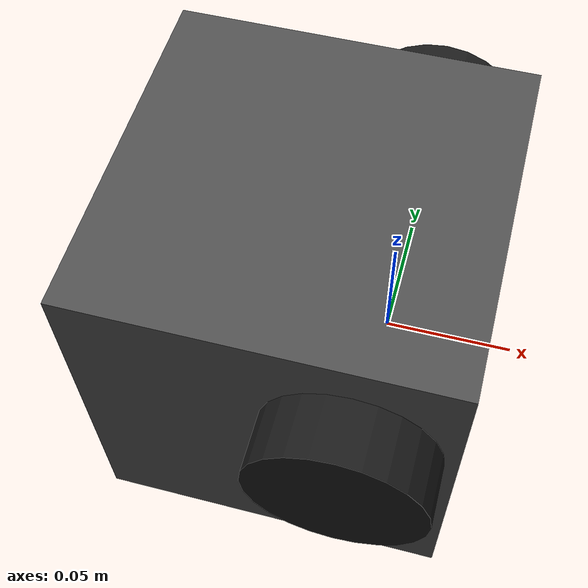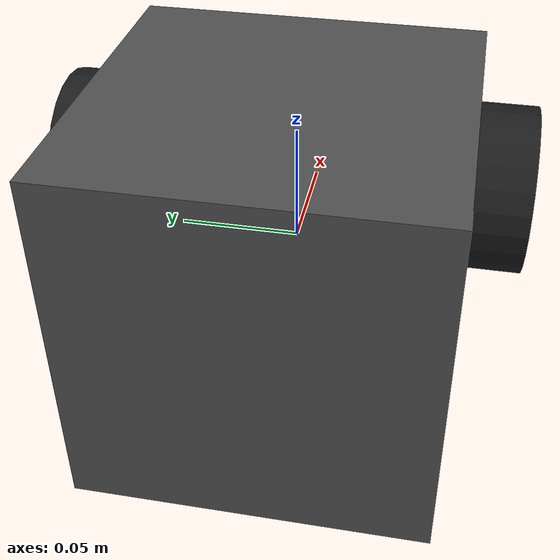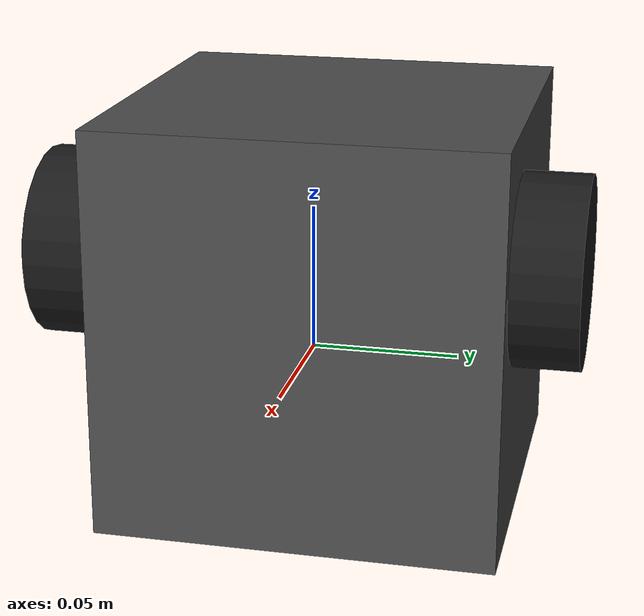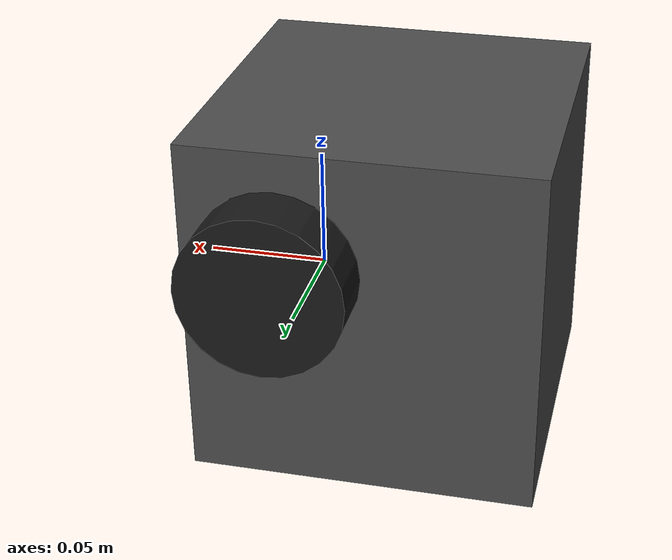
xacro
<?xml version="1.0" ?>
<robot name="turtlebot3_burger" xmlns:xacro="http://ros.org/wiki/xacro">

  <!-- Properties -->
  <xacro:property name="M_PI" value="3.1415926535897931" />
  <xacro:property name="wheel_radius" value="0.033" />
  <xacro:property name="wheel_width" value="0.026" />
  <xacro:property name="wheel_separation" value="0.160" />
  <xacro:property name="base_radius" value="0.105" />
  <xacro:property name="base_height" value="0.192" />

  <!-- Base Link -->
  <link name="base_footprint"/>

  <joint name="base_joint" type="fixed">
    <parent link="base_footprint"/>
    <child link="base_link"/>
    <origin xyz="0.0 0.0 0.010" rpy="0 0 0"/>
  </joint>

  <link name="base_link">
    <visual>
      <origin xyz="-0.032 0 0.0" rpy="0 0 0"/>
      <geometry>
        <box size="0.140 0.140 0.143"/>
      </geometry>
      <material name="light_black">
        <color rgba="0.3 0.3 0.3 1.0"/>
      </material>
    </visual>

    <collision>
      <origin xyz="-0.032 0 0.070" rpy="0 0 0"/>
      <geometry>
        <box size="0.140 0.140 0.143"/>
      </geometry>
    </collision>

    <inertial>
      <origin xyz="0 0 0" rpy="0 0 0"/>
      <mass value="1.0"/>
      <inertia ixx="1e-3" ixy="0.0" ixz="0.0"
               iyy="1e-3" iyz="0.0"
               izz="1e-3"/>
    </inertial>
  </link>

  <!-- Wheel Macro -->
  <xacro:macro name="wheel" params="prefix reflect">
    <link name="${prefix}_wheel_link">
      <visual>
        <origin xyz="0 0 0" rpy="${M_PI/2} 0 0"/>
        <geometry>
          <cylinder length="${wheel_width}" radius="${wheel_radius}"/>
        </geometry>
        <material name="dark">
          <color rgba="0.1 0.1 0.1 1.0"/>
        </material>
      </visual>

      <collision>
        <origin xyz="0 0 0" rpy="${M_PI/2} 0 0"/>
        <geometry>
          <cylinder length="${wheel_width}" radius="${wheel_radius}"/>
        </geometry>
      </collision>

      <inertial>
        <origin xyz="0 0 0" rpy="0 0 0"/>
        <mass value="0.1"/>
        <inertia ixx="1e-4" ixy="0.0" ixz="0.0"
                 iyy="1e-4" iyz="0.0"
                 izz="1e-4"/>
      </inertial>
    </link>

    <joint name="${prefix}_wheel_joint" type="continuous">
      <parent link="base_link"/>
      <child link="${prefix}_wheel_link"/>
      <origin xyz="0.0 ${reflect*wheel_separation/2} 0.023" rpy="0 0 0"/>
      <axis xyz="0 1 0"/>
    </joint>
  </xacro:macro>

  <xacro:wheel prefix="left" reflect="1"/>
  <xacro:wheel prefix="right" reflect="-1"/>

  <!-- Caster Wheel -->
  <link name="caster_link">
    <visual>
      <origin xyz="0 0 0" rpy="0 0 0"/>
      <geometry>
        <sphere radius="0.005"/>
      </geometry>
      <material name="dark">
        <color rgba="0.1 0.1 0.1 1.0"/>
      </material>
    </visual>

    <collision>
      <origin xyz="0 0 0" rpy="0 0 0"/>
      <geometry>
        <sphere radius="0.005"/>
      </geometry>
    </collision>

    <inertial>
      <origin xyz="0 0 0" rpy="0 0 0"/>
      <mass value="0.01"/>
      <inertia ixx="1e-6" ixy="0.0" ixz="0.0"
               iyy="1e-6" iyz="0.0"
               izz="1e-6"/>
    </inertial>
  </link>

  <joint name="caster_joint" type="fixed">
    <parent link="base_link"/>
    <child link="caster_link"/>
    <origin xyz="-0.081 0 -0.004" rpy="0 0 0"/>
  </joint>

  <!-- IMU Link -->
  <link name="imu_link">
    <inertial>
      <origin xyz="0 0 0" rpy="0 0 0"/>
      <mass value="0.001"/>
      <inertia ixx="1e-6" ixy="0" ixz="0"
               iyy="1e-6" iyz="0"
               izz="1e-6"/>
    </inertial>
  </link>

  <joint name="imu_joint" type="fixed">
    <parent link="base_link"/>
    <child link="imu_link"/>
    <origin xyz="-0.032 0 0.068" rpy="0 0 0"/>
  </joint>

  <!-- Gazebo Plugins -->
  <gazebo>
    <plugin name="gazebo_ros_control" filename="libgazebo_ros_diff_drive.so">
      <ros>
        <namespace>/</namespace>
      </ros>
      <update_rate>30</update_rate>
      <left_joint>left_wheel_joint</left_joint>
      <right_joint>right_wheel_joint</right_joint>
      <wheel_separation>${wheel_separation}</wheel_separation>
      <wheel_diameter>${2*wheel_radius}</wheel_diameter>
      <max_wheel_torque>20</max_wheel_torque>
      <max_wheel_acceleration>1.0</max_wheel_acceleration>
      <command_topic>cmd_vel</command_topic>
      <publish_odom>true</publish_odom>
      <publish_odom_tf>true</publish_odom_tf>
      <publish_wheel_tf>false</publish_wheel_tf>
      <odometry_topic>odom</odometry_topic>
      <odometry_frame>odom</odometry_frame>
      <robot_base_frame>base_footprint</robot_base_frame>
    </plugin>
  </gazebo>

  <!-- Gazebo colors -->
  <gazebo reference="base_link">
    <material>Gazebo/DarkGrey</material>
  </gazebo>

  <gazebo reference="left_wheel_link">
    <material>Gazebo/Black</material>
    <mu1>0.5</mu1>
    <mu2>0.5</mu2>
    <kp>1000000.0</kp>
    <kd>100.0</kd>
    <minDepth>0.001</minDepth>
    <maxVel>1.0</maxVel>
  </gazebo>

  <gazebo reference="right_wheel_link">
    <material>Gazebo/Black</material>
    <mu1>0.5</mu1>
    <mu2>0.5</mu2>
    <kp>1000000.0</kp>
    <kd>100.0</kd>
    <minDepth>0.001</minDepth>
    <maxVel>1.0</maxVel>
  </gazebo>

  <gazebo reference="caster_link">
    <material>Gazebo/Black</material>
    <mu1>0.0</mu1>
    <mu2>0.0</mu2>
    <kp>1000000.0</kp>
    <kd>100.0</kd>
    <minDepth>0.001</minDepth>
    <maxVel>1.0</maxVel>
  </gazebo>

</robot>
